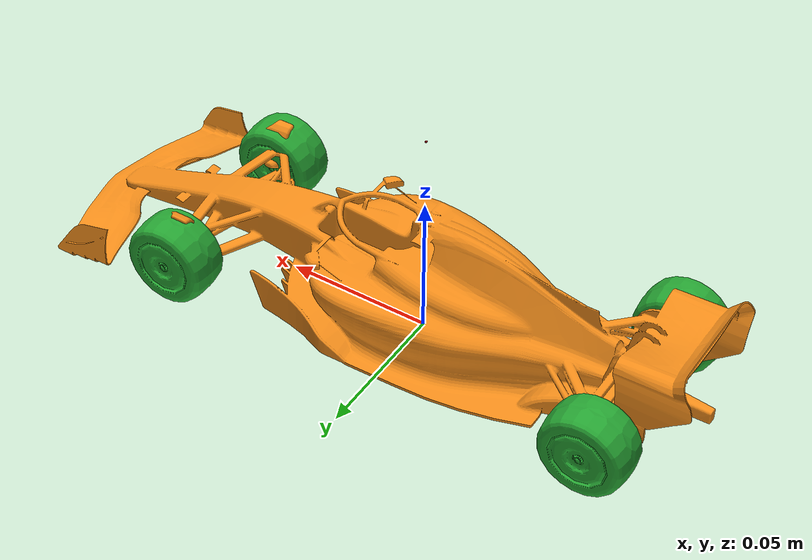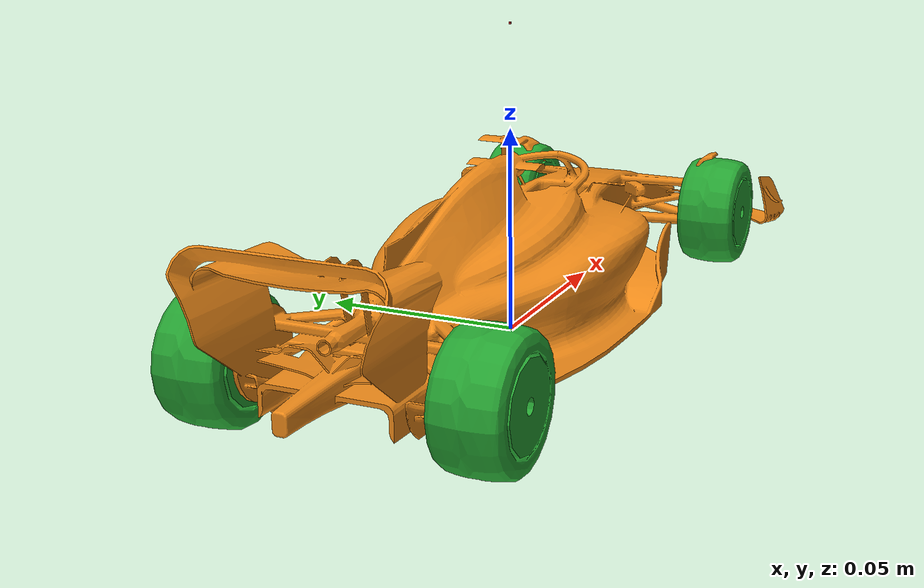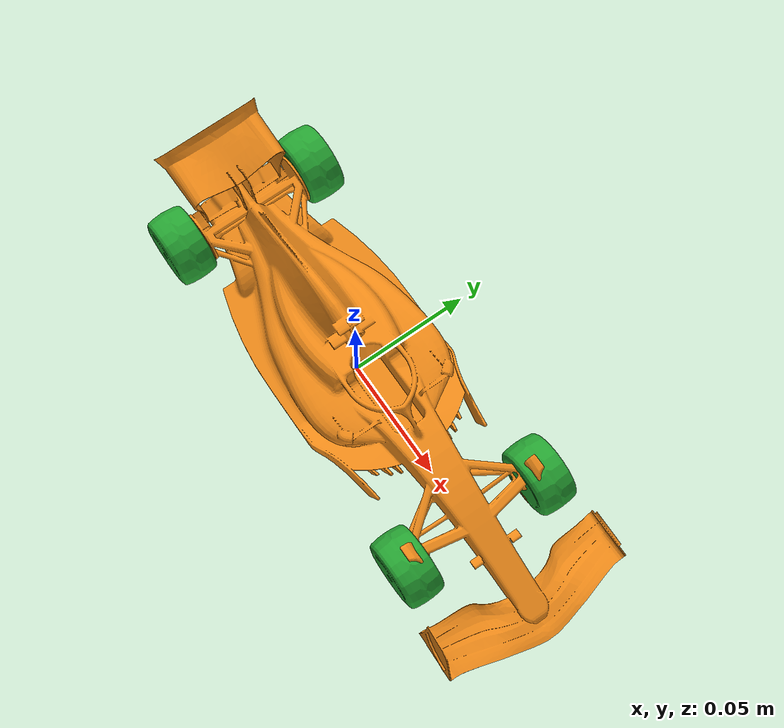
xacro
<?xml version='1.0'?>

<robot name="test_bot" xmlns:xacro="http://www.ros.org/wiki/xacro">

  <!-- Gazebo plugin -->
  <xacro:include filename="$(find versenypalya)/urdf/test_bot.gazebo" />

  <!-- RViz colors -->
  <xacro:include filename="$(find versenypalya)/urdf/materials.xacro" />

  <!-- Include wheel macros -->
  <xacro:include filename="$(find versenypalya)/urdf/wheel.xacro" />

  <!-- Pi -->
  <xacro:property name="M_PI" value="3.14159"/>

  <!-- Base Size -->
  <xacro:property name="base_x_size" value="0.2285" />
  <xacro:property name="base_y_size" value="0.0806" />
  <xacro:property name="base_z_size" value="0.0369" />

  <!-- Wheel Mounting Positions -->
  <xacro:property name="wheelbase" value="0.152" />
  <xacro:property name="track" value="0.06" />
  <xacro:property name="wheel_vertical_offset" value="0.015" />

  <!-- Wheel Properties -->
  <xacro:property name="wheel_length" value="0.0296" />
  <xacro:property name="wheel_radius" value="0.015365" />

  <link name="base_footprint"></link>

  <joint name="base_footprint_joint" type="fixed">
    <origin xyz="0 0 0" rpy="0 0 0" />
    <parent link="base_footprint"/>
    <child link="base_link" />
  </joint>

  <!-- Robot chassis -->
  <link name='base_link'>
    <pose>0 0 0.1 0 0 0</pose>

    <inertial>
      <mass value="15.0"/>
      <origin xyz="0.0 0 0" rpy="0 0 0"/>
      <inertia
          ixx="0.1" ixy="0" ixz="0"
          iyy="0.1" iyz="0"
          izz="0.1"
      />
    </inertial>

    <collision name='collision'>
      <origin xyz="0 0 0.02" rpy="0 0 0"/>
      <geometry>
        <box size="${base_x_size} ${base_y_size} ${base_z_size}"/>
      </geometry>
    </collision>

    <visual name='base_link_visual'>
      <origin xyz="0 0 0" rpy="0 0 0"/>
      <geometry>
        <!--box size="${base_x_size} ${base_y_size} ${base_z_size}"/-->
        <!--mesh filename = "package://urdf_examples/meshes/base_link.dae"/-->
        <mesh filename = "package://versenypalya/meshes/CarBody.dae"/>
      </geometry>
      <material name="orange"/>
    </visual>

  </link>

  <!-- Wheel macros -->
  <xacro:test_wheel wheel_prefix="front_left">
    <origin xyz="${wheelbase/2} ${track/2} ${wheel_vertical_offset}" rpy="0 0 0" />
  </xacro:test_wheel>
  <xacro:test_wheel wheel_prefix="front_right">
    <origin xyz="${wheelbase/2} ${-track/2} ${wheel_vertical_offset}" rpy="0 0 0" />
  </xacro:test_wheel>
  <xacro:test_wheel wheel_prefix="rear_left">
    <origin xyz="${-wheelbase/2} ${track/2} ${wheel_vertical_offset}" rpy="0 0 0" />
  </xacro:test_wheel>
  <xacro:test_wheel wheel_prefix="rear_right">
    <origin xyz="${-wheelbase/2} ${-track/2} ${wheel_vertical_offset}" rpy="0 0 0" />
  </xacro:test_wheel>

  <!-- Camera -->
  <joint type="fixed" name="camera_joint">
    <origin xyz="0 0 0.075" rpy="0 0 0"/>
    <child link="camera_link"/>
    <parent link="base_link"/>
    <axis xyz="0 1 0" />
  </joint>

  <link name='camera_link'>
    <pose>0 0 0 0 0 0</pose>
    <inertial>
      <mass value="0.1"/>
      <origin xyz="0 0 0" rpy="0 0 0"/>
      <inertia
          ixx="1e-6" ixy="0" ixz="0"
          iyy="1e-6" iyz="0"
          izz="1e-6"
      />
    </inertial>

    <collision name='collision'>
      <origin xyz="0 0 0" rpy="0 0 0"/>
      <geometry>
        <box size=".0005 .0005 .0005"/>
      </geometry>
    </collision>

    <visual name='camera_link_visual'>
      <origin xyz="0 0 0" rpy="0 0 0"/>
      <geometry>
        <box size=".0005 .0005 .0005"/>
      </geometry>
    </visual>

  </link>

  <gazebo reference="camera_link">
    <material>Gazebo/Red</material>
  </gazebo>

  <joint type="fixed" name="camera_optical_joint">
    <origin xyz="0 0 0" rpy="-1.5707 0 -1.5707"/>
    <child link="camera_link_optical"/>
    <parent link="camera_link"/>
  </joint>

  <link name="camera_link_optical">
  </link>

  <!-- IMU -->
  <joint name="imu_joint" type="fixed">
    <origin xyz="0 0 0" rpy="0 0 0" />
    <parent link="base_link"/>
    <child link="imu_link" />
  </joint>

  <link name="imu_link">
  </link>

</robot>

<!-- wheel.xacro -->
<robot xmlns:xacro="http://ros.org/wiki/xacro" name="test_wheel">

	<xacro:macro name="test_wheel" params="wheel_prefix *joint_pose">
		<link name="${wheel_prefix}">
			<inertial>
				<mass value="2.637" />
				<origin xyz="0 0 0" rpy="0 ${M_PI/2} ${M_PI/2}"/>
				<inertia  ixx="0.02467" ixy="0" ixz="0" iyy="0.04411" iyz="0" izz="0.02467" />
			</inertial>
			<visual>
				<origin xyz="0 0 0" rpy="0 ${M_PI/2} ${M_PI/2}" />
				<geometry>
                    <!--cylinder length="${wheel_length}" radius="${wheel_radius}" /-->
                    <!--mesh filename = "package://urdf_examples/meshes/wheel.dae"/-->
					<mesh filename = "package://versenypalya/meshes/wheel_v1.dae"/>
				</geometry>
                <material name="green"/>
			</visual>
			<collision>
				<origin xyz="0 0 0" rpy="0 ${M_PI/2} ${M_PI/2}" />
				<geometry>
					<cylinder length="${wheel_length}" radius="${wheel_radius}" />
				</geometry>
			</collision>
		</link>

		<gazebo reference="${wheel_prefix}">
			<mu1 value="1.0"/>
			<mu2 value="1.0"/>
			<kp value="10000000.0" />
			<kd value="1.0" />
			<fdir1 value="1 0 0"/>
		</gazebo>

		<joint name="${wheel_prefix}_wheel" type="continuous">
			<parent link="base_link"/>
			<child link="${wheel_prefix}"/>
			<xacro:insert_block name="joint_pose"/>
			<axis xyz="0 1 0" rpy="0 0 0" />
		</joint>

	</xacro:macro>

</robot>
